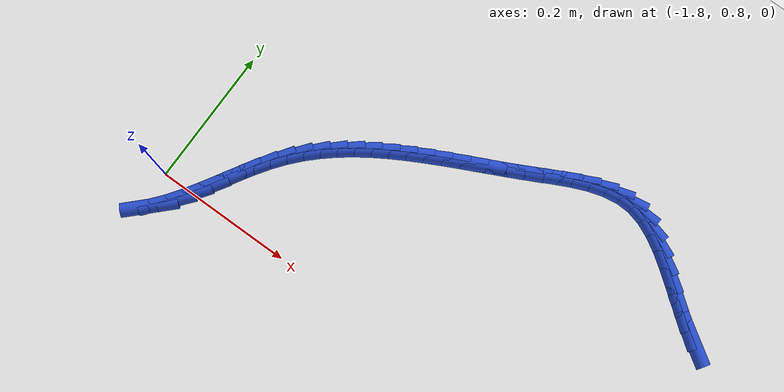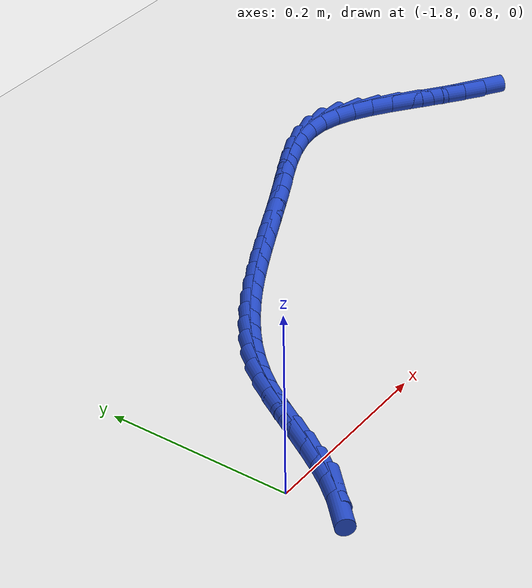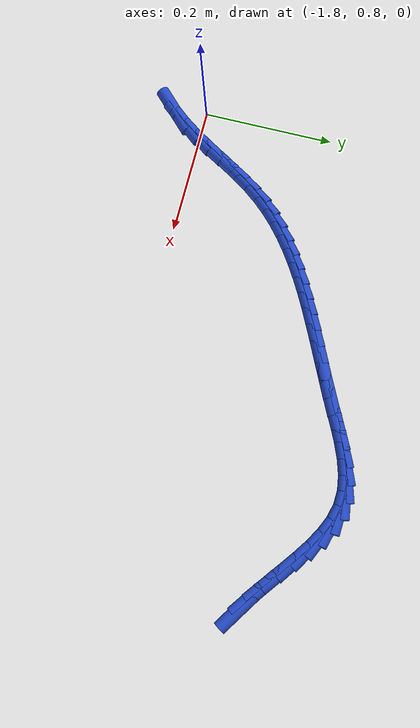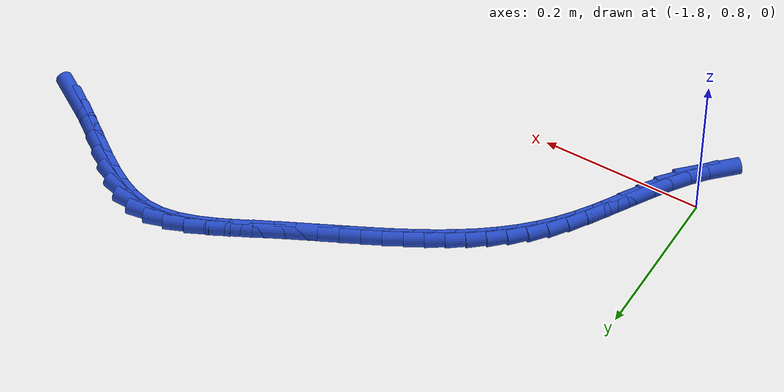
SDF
<sdf version="1.6">
 <world name="default">
  <model name="ground_plane">
   <static>1</static>
   <link name="link">
    <collision name="collision">
     <geometry><plane><normal>0 0 1</normal><size>100 100</size></plane></geometry>
     <surface><friction><ode><mu>100</mu><mu2>50</mu2></ode></friction></surface>
    </collision>
    <visual name="visual">
     <cast_shadows>0</cast_shadows>
     <geometry><plane><normal>0 0 1</normal><size>100 100</size></plane></geometry>
     <material>
      <script><uri>file://media/materials/scripts/gazebo.material</uri><name>Gazebo/WhiteGlow</name></script>
     </material>
    </visual>
   </link>
  </model>
  <model name="line">
   <link name="link_71">
    <pose>-1.0857147026035259 1.037077842646319 0.01 0 1.57 -0.5807513590610146</pose>
    <collision name="collision">
     <geometry><cylinder><radius>0.01</radius><length>0.08</length></cylinder></geometry>
    </collision>
    <visual name="visual">
     <material>
      <script><name>Gazebo/Blue</name><uri>file://media/materials/scripts/gazebo.material</uri></script>
     </material>
     <geometry><cylinder><radius>0.01</radius><length>0.08</length></cylinder></geometry>
    </visual>
   </link>
   <link name="link_72">
    <pose>-1.1070483210717446 1.0510778773280445 0.01 0 1.57 -0.6333120152724254</pose>
    <collision name="collision">
     <geometry><cylinder><radius>0.01</radius><length>0.08</length></cylinder></geometry>
    </collision>
    <visual name="visual">
     <material>
      <script><name>Gazebo/Blue</name><uri>file://media/materials/scripts/gazebo.material</uri></script>
     </material>
     <geometry><cylinder><radius>0.01</radius><length>0.08</length></cylinder></geometry>
    </visual>
   </link>
   <link name="link_73">
    <pose>-1.1279748500396338 1.0664421293999844 0.01 0 1.57 -0.6551869053698643</pose>
    <collision name="collision">
     <geometry><cylinder><radius>0.01</radius><length>0.08</length></cylinder></geometry>
    </collision>
    <visual name="visual">
     <material>
      <script><name>Gazebo/Blue</name><uri>file://media/materials/scripts/gazebo.material</uri></script>
     </material>
     <geometry><cylinder><radius>0.01</radius><length>0.08</length></cylinder></geometry>
    </visual>
   </link>
   <link name="link_74">
    <pose>-1.1486283951867695 1.082312754377485 0.01 0 1.57 -0.6476421876659263</pose>
    <collision name="collision">
     <geometry><cylinder><radius>0.01</radius><length>0.08</length></cylinder></geometry>
    </collision>
    <visual name="visual">
     <material>
      <script><name>Gazebo/Blue</name><uri>file://media/materials/scripts/gazebo.material</uri></script>
     </material>
     <geometry><cylinder><radius>0.01</radius><length>0.08</length></cylinder></geometry>
    </visual>
   </link>
   <link name="link_75">
    <pose>-1.1691430621927281 1.0978319077758942 0.01 0 1.57 -0.6091834234467767</pose>
    <collision name="collision">
     <geometry><cylinder><radius>0.01</radius><length>0.08</length></cylinder></geometry>
    </collision>
    <visual name="visual">
     <material>
      <script><name>Gazebo/Blue</name><uri>file://media/materials/scripts/gazebo.material</uri></script>
     </material>
     <geometry><cylinder><radius>0.01</radius><length>0.08</length></cylinder></geometry>
    </visual>
   </link>
   <link name="link_76">
    <pose>-1.189652956737085 1.1121417451105584 0.01 0 1.57 -0.5353861067403141</pose>
    <collision name="collision">
     <geometry><cylinder><radius>0.01</radius><length>0.08</length></cylinder></geometry>
    </collision>
    <visual name="visual">
     <material>
      <script><name>Gazebo/Blue</name><uri>file://media/materials/scripts/gazebo.material</uri></script>
     </material>
     <geometry><cylinder><radius>0.01</radius><length>0.08</length></cylinder></geometry>
    </visual>
   </link>
   <link name="link_77">
    <pose>-1.2102921844994172 1.1243844218968255 0.01 0 1.57 -0.41932630337566856</pose>
    <collision name="collision">
     <geometry><cylinder><radius>0.01</radius><length>0.08</length></cylinder></geometry>
    </collision>
    <visual name="visual">
     <material>
      <script><name>Gazebo/Blue</name><uri>file://media/materials/scripts/gazebo.material</uri></script>
     </material>
     <geometry><cylinder><radius>0.01</radius><length>0.08</length></cylinder></geometry>
    </visual>
   </link>
   <link name="link_78">
    <pose>-1.2311948511592994 1.1337020936500417 0.01 0 1.57 -0.2542258953793268</pose>
    <collision name="collision">
     <geometry><cylinder><radius>0.01</radius><length>0.08</length></cylinder></geometry>
    </collision>
    <visual name="visual">
     <material>
      <script><name>Gazebo/Blue</name><uri>file://media/materials/scripts/gazebo.material</uri></script>
     </material>
     <geometry><cylinder><radius>0.01</radius><length>0.08</length></cylinder></geometry>
    </visual>
   </link>
   <link name="link_79">
    <pose>-1.2524950623963083 1.1392369158855542 0.01 0 1.57 -0.04357714665242913</pose>
    <collision name="collision">
     <geometry><cylinder><radius>0.01</radius><length>0.08</length></cylinder></geometry>
    </collision>
    <visual name="visual">
     <material>
      <script><name>Gazebo/Blue</name><uri>file://media/materials/scripts/gazebo.material</uri></script>
     </material>
     <geometry><cylinder><radius>0.01</radius><length>0.08</length></cylinder></geometry>
    </visual>
   </link>
   <link name="link_80">
    <pose>-1.2743191834197212 1.1401885512591738 0.01 0 1.57 0.15494856343534053</pose>
    <collision name="collision">
     <geometry><cylinder><radius>0.01</radius><length>0.08</length></cylinder></geometry>
    </collision>
    <visual name="visual">
     <material>
      <script><name>Gazebo/Blue</name><uri>file://media/materials/scripts/gazebo.material</uri></script>
     </material>
     <geometry><cylinder><radius>0.01</radius><length>0.08</length></cylinder></geometry>
    </visual>
   </link>
   <link name="link_81">
    <pose>-1.2966668989865384 1.1366978236588285 0.01 0 1.57 0.2992500020910055</pose>
    <collision name="collision">
     <geometry><cylinder><radius>0.01</radius><length>0.08</length></cylinder></geometry>
    </collision>
    <visual name="visual">
     <material>
      <script><name>Gazebo/Blue</name><uri>file://media/materials/scripts/gazebo.material</uri></script>
     </material>
     <geometry><cylinder><radius>0.01</radius><length>0.08</length></cylinder></geometry>
    </visual>
   </link>
   <link name="link_82">
    <pose>-1.3194345039125746 1.1296736834093672 0.01 0 1.57 0.39512939659951296</pose>
    <collision name="collision">
     <geometry><cylinder><radius>0.01</radius><length>0.08</length></cylinder></geometry>
    </collision>
    <visual name="visual">
     <material>
      <script><name>Gazebo/Blue</name><uri>file://media/materials/scripts/gazebo.material</uri></script>
     </material>
     <geometry><cylinder><radius>0.01</radius><length>0.08</length></cylinder></geometry>
    </visual>
   </link>
   <link name="link_83">
    <pose>-1.3425152709971997 1.1200475326399078 0.01 0 1.57 0.45166149255052174</pose>
    <collision name="collision">
     <geometry><cylinder><radius>0.01</radius><length>0.08</length></cylinder></geometry>
    </collision>
    <visual name="visual">
     <material>
      <script><name>Gazebo/Blue</name><uri>file://media/materials/scripts/gazebo.material</uri></script>
     </material>
     <geometry><cylinder><radius>0.01</radius><length>0.08</length></cylinder></geometry>
    </visual>
   </link>
   <link name="link_84">
    <pose>-1.365802473039785 1.1087507734795696 0.01 0 1.57 0.47529516162897273</pose>
    <collision name="collision">
     <geometry><cylinder><radius>0.01</radius><length>0.08</length></cylinder></geometry>
    </collision>
    <visual name="visual">
     <material>
      <script><name>Gazebo/Blue</name><uri>file://media/materials/scripts/gazebo.material</uri></script>
     </material>
     <geometry><cylinder><radius>0.01</radius><length>0.08</length></cylinder></geometry>
    </visual>
   </link>
   <link name="link_85">
    <pose>-1.3891893828397013 1.0967148080574727 0.01 0 1.57 0.4707790373488146</pose>
    <collision name="collision">
     <geometry><cylinder><radius>0.01</radius><length>0.08</length></cylinder></geometry>
    </collision>
    <visual name="visual">
     <material>
      <script><name>Gazebo/Blue</name><uri>file://media/materials/scripts/gazebo.material</uri></script>
     </material>
     <geometry><cylinder><radius>0.01</radius><length>0.08</length></cylinder></geometry>
    </visual>
   </link>
   <link name="link_86">
    <pose>-1.4125705870942782 1.084815029793274 0.01 0 1.57 0.459084178298226</pose>
    <collision name="collision">
     <geometry><cylinder><radius>0.01</radius><length>0.08</length></cylinder></geometry>
    </collision>
    <visual name="visual">
     <material>
      <script><name>Gazebo/Blue</name><uri>file://media/materials/scripts/gazebo.material</uri></script>
     </material>
     <geometry><cylinder><radius>0.01</radius><length>0.08</length></cylinder></geometry>
    </visual>
   </link>
   <link name="link_87">
    <pose>-1.4358552548566486 1.0733052169164998 0.01 0 1.57 0.45321910208213384</pose>
    <collision name="collision">
     <geometry><cylinder><radius>0.01</radius><length>0.08</length></cylinder></geometry>
    </collision>
    <visual name="visual">
     <material>
      <script><name>Gazebo/Blue</name><uri>file://media/materials/scripts/gazebo.material</uri></script>
     </material>
     <geometry><cylinder><radius>0.01</radius><length>0.08</length></cylinder></geometry>
    </visual>
   </link>
   <link name="link_88">
    <pose>-1.45896164478779 1.0620516767717623 0.01 0 1.57 0.45356805085304674</pose>
    <collision name="collision">
     <geometry><cylinder><radius>0.01</radius><length>0.08</length></cylinder></geometry>
    </collision>
    <visual name="visual">
     <material>
      <script><name>Gazebo/Blue</name><uri>file://media/materials/scripts/gazebo.material</uri></script>
     </material>
     <geometry><cylinder><radius>0.01</radius><length>0.08</length></cylinder></geometry>
    </visual>
   </link>
   <link name="link_89">
    <pose>-1.4818081533603067 1.0509148420834487 0.01 0 1.57 0.4603428049751805</pose>
    <collision name="collision">
     <geometry><cylinder><radius>0.01</radius><length>0.08</length></cylinder></geometry>
    </collision>
    <visual name="visual">
     <material>
      <script><name>Gazebo/Blue</name><uri>file://media/materials/scripts/gazebo.material</uri></script>
     </material>
     <geometry><cylinder><radius>0.01</radius><length>0.08</length></cylinder></geometry>
    </visual>
   </link>
   <link name="link_90">
    <pose>-1.5043131770468054 1.0397551455759482 0.01 0 1.57 0.4737816377781373</pose>
    <collision name="collision">
     <geometry><cylinder><radius>0.01</radius><length>0.08</length></cylinder></geometry>
    </collision>
    <visual name="visual">
     <material>
      <script><name>Gazebo/Blue</name><uri>file://media/materials/scripts/gazebo.material</uri></script>
     </material>
     <geometry><cylinder><radius>0.01</radius><length>0.08</length></cylinder></geometry>
    </visual>
   </link>
   <link name="link_91">
    <pose>-1.526395112319892 1.0284330199736478 0.01 0 1.57 0.4941427719390317</pose>
    <collision name="collision">
     <geometry><cylinder><radius>0.01</radius><length>0.08</length></cylinder></geometry>
    </collision>
    <visual name="visual">
     <material>
      <script><name>Gazebo/Blue</name><uri>file://media/materials/scripts/gazebo.material</uri></script>
     </material>
     <geometry><cylinder><radius>0.01</radius><length>0.08</length></cylinder></geometry>
    </visual>
   </link>
   <link name="link_92">
    <pose>-1.547972355652172 1.016808898000936 0.01 0 1.57 0.5216871408295959</pose>
    <collision name="collision">
     <geometry><cylinder><radius>0.01</radius><length>0.08</length></cylinder></geometry>
    </collision>
    <visual name="visual">
     <material>
      <script><name>Gazebo/Blue</name><uri>file://media/materials/scripts/gazebo.material</uri></script>
     </material>
     <geometry><cylinder><radius>0.01</radius><length>0.08</length></cylinder></geometry>
    </visual>
   </link>
   <link name="link_93">
    <pose>-1.5689633035162516 1.0047432123822004 0.01 0 1.57 0.5566476970689294</pose>
    <collision name="collision">
     <geometry><cylinder><radius>0.01</radius><length>0.08</length></cylinder></geometry>
    </collision>
    <visual name="visual">
     <material>
      <script><name>Gazebo/Blue</name><uri>file://media/materials/scripts/gazebo.material</uri></script>
     </material>
     <geometry><cylinder><radius>0.01</radius><length>0.08</length></cylinder></geometry>
    </visual>
   </link>
   <link name="link_94">
    <pose>-1.5892863523847367 0.9920963958418291 0.01 0 1.57 0.5991828064371691</pose>
    <collision name="collision">
     <geometry><cylinder><radius>0.01</radius><length>0.08</length></cylinder></geometry>
    </collision>
    <visual name="visual">
     <material>
      <script><name>Gazebo/Blue</name><uri>file://media/materials/scripts/gazebo.material</uri></script>
     </material>
     <geometry><cylinder><radius>0.01</radius><length>0.08</length></cylinder></geometry>
    </visual>
   </link>
   <link name="link_95">
    <pose>-1.608859898730233 0.9787288811042103 0.01 0 1.57 0.6493130444478238</pose>
    <collision name="collision">
     <geometry><cylinder><radius>0.01</radius><length>0.08</length></cylinder></geometry>
    </collision>
    <visual name="visual">
     <material>
      <script><name>Gazebo/Blue</name><uri>file://media/materials/scripts/gazebo.material</uri></script>
     </material>
     <geometry><cylinder><radius>0.01</radius><length>0.08</length></cylinder></geometry>
    </visual>
   </link>
   <link name="link_96">
    <pose>-1.6276023390253467 0.9645011008937319 0.01 0 1.57 0.7068448666248416</pose>
    <collision name="collision">
     <geometry><cylinder><radius>0.01</radius><length>0.08</length></cylinder></geometry>
    </collision>
    <visual name="visual">
     <material>
      <script><name>Gazebo/Blue</name><uri>file://media/materials/scripts/gazebo.material</uri></script>
     </material>
     <geometry><cylinder><radius>0.01</radius><length>0.08</length></cylinder></geometry>
    </visual>
   </link>
   <link name="link_97">
    <pose>-1.6454320697426832 0.949273487934782 0.01 0 1.57 0.771291558848895</pose>
    <collision name="collision">
     <geometry><cylinder><radius>0.01</radius><length>0.08</length></cylinder></geometry>
    </collision>
    <visual name="visual">
     <material>
      <script><name>Gazebo/Blue</name><uri>file://media/materials/scripts/gazebo.material</uri></script>
     </material>
     <geometry><cylinder><radius>0.01</radius><length>0.08</length></cylinder></geometry>
    </visual>
   </link>
   <link name="link_98">
    <pose>-1.6622674873548482 0.9329064749517478 0.01 0 1.57 0.8418103947982446</pose>
    <collision name="collision">
     <geometry><cylinder><radius>0.01</radius><length>0.08</length></cylinder></geometry>
    </collision>
    <visual name="visual">
     <material>
      <script><name>Gazebo/Blue</name><uri>file://media/materials/scripts/gazebo.material</uri></script>
     </material>
     <geometry><cylinder><radius>0.01</radius><length>0.08</length></cylinder></geometry>
    </visual>
   </link>
   <link name="link_99">
    <pose>-1.678026988334448 0.9152604946690182 0.01 0 1.57 0.9164682490894734</pose>
    <collision name="collision">
     <geometry><cylinder><radius>0.01</radius><length>0.08</length></cylinder></geometry>
    </collision>
    <visual name="visual">
     <material>
      <script><name>Gazebo/Blue</name><uri>file://media/materials/scripts/gazebo.material</uri></script>
     </material>
     <geometry><cylinder><radius>0.01</radius><length>0.08</length></cylinder></geometry>
    </visual>
   </link>
   <link name="link_100">
    <pose>-1.692640033034061 0.8962096836968088 0.01 0 1.57 0.9797638499139826</pose>
    <collision name="collision">
     <geometry><cylinder><radius>0.01</radius><length>0.08</length></cylinder></geometry>
    </collision>
    <visual name="visual">
     <material>
      <script><name>Gazebo/Blue</name><uri>file://media/materials/scripts/gazebo.material</uri></script>
     </material>
     <geometry><cylinder><radius>0.01</radius><length>0.08</length></cylinder></geometry>
    </visual>
   </link>
   <link name="link_101">
    <pose>-1.70626282791627 0.8759090297401771 0.01 0 1.57 1.0192625388499446</pose>
    <collision name="collision">
     <geometry><cylinder><radius>0.01</radius><length>0.08</length></cylinder></geometry>
    </collision>
    <visual name="visual">
     <material>
      <script><name>Gazebo/Blue</name><uri>file://media/materials/scripts/gazebo.material</uri></script>
     </material>
     <geometry><cylinder><radius>0.01</radius><length>0.08</length></cylinder></geometry>
    </visual>
   </link>
   <link name="link_102">
    <pose>-1.7192639161290146 0.854776523871937 0.01 0 1.57 1.0360513150344444</pose>
    <collision name="collision">
     <geometry><cylinder><radius>0.01</radius><length>0.08</length></cylinder></geometry>
    </collision>
    <visual name="visual">
     <material>
      <script><name>Gazebo/Blue</name><uri>file://media/materials/scripts/gazebo.material</uri></script>
     </material>
     <geometry><cylinder><radius>0.01</radius><length>0.08</length></cylinder></geometry>
    </visual>
   </link>
   <link name="link_103">
    <pose>-1.7320200189201447 0.8332402866807463 0.01 0 1.57 1.0310357573135986</pose>
    <collision name="collision">
     <geometry><cylinder><radius>0.01</radius><length>0.08</length></cylinder></geometry>
    </collision>
    <visual name="visual">
     <material>
      <script><name>Gazebo/Blue</name><uri>file://media/materials/scripts/gazebo.material</uri></script>
     </material>
     <geometry><cylinder><radius>0.01</radius><length>0.08</length></cylinder></geometry>
    </visual>
   </link>
   <link name="link_104">
    <pose>-1.74490785753751 0.8117284387552625 0.01 0 1.57 1.0042395409620208</pose>
    <collision name="collision">
     <geometry><cylinder><radius>0.01</radius><length>0.08</length></cylinder></geometry>
    </collision>
    <visual name="visual">
     <material>
      <script><name>Gazebo/Blue</name><uri>file://media/materials/scripts/gazebo.material</uri></script>
     </material>
     <geometry><cylinder><radius>0.01</radius><length>0.08</length></cylinder></geometry>
    </visual>
   </link>
   <link name="link_105">
    <pose>-1.7583041532289598 0.7906691006841422 0.01 0 1.57 0.9548881439494232</pose>
    <collision name="collision">
     <geometry><cylinder><radius>0.01</radius><length>0.08</length></cylinder></geometry>
    </collision>
    <visual name="visual">
     <material>
      <script><name>Gazebo/Blue</name><uri>file://media/materials/scripts/gazebo.material</uri></script>
     </material>
     <geometry><cylinder><radius>0.01</radius><length>0.08</length></cylinder></geometry>
    </visual>
   </link>
   <link name="link_106">
    <pose>-1.7725856272423455 0.7704903930560438 0.01 0 1.57 0.8817642882431348</pose>
    <collision name="collision">
     <geometry><cylinder><radius>0.01</radius><length>0.08</length></cylinder></geometry>
    </collision>
    <visual name="visual">
     <material>
      <script><name>Gazebo/Blue</name><uri>file://media/materials/scripts/gazebo.material</uri></script>
     </material>
     <geometry><cylinder><radius>0.01</radius><length>0.08</length></cylinder></geometry>
    </visual>
   </link>
   <link name="link_107">
    <pose>-1.788129000825515 0.7516204364596241 0.01 0 1.57 0.7839728602220372</pose>
    <collision name="collision">
     <geometry><cylinder><radius>0.01</radius><length>0.08</length></cylinder></geometry>
    </collision>
    <visual name="visual">
     <material>
      <script><name>Gazebo/Blue</name><uri>file://media/materials/scripts/gazebo.material</uri></script>
     </material>
     <geometry><cylinder><radius>0.01</radius><length>0.08</length></cylinder></geometry>
    </visual>
   </link>
  </model>
 </world>
</sdf>
